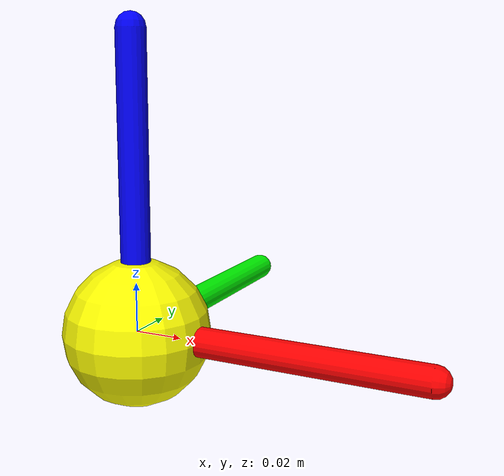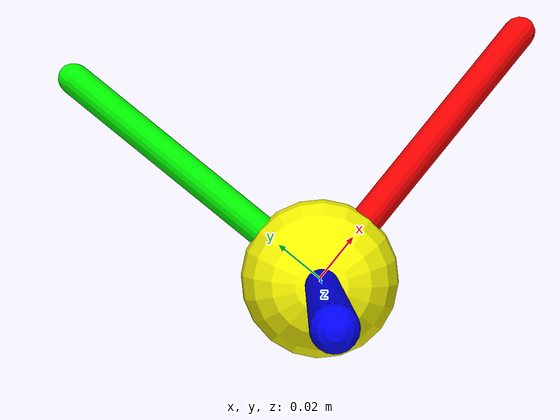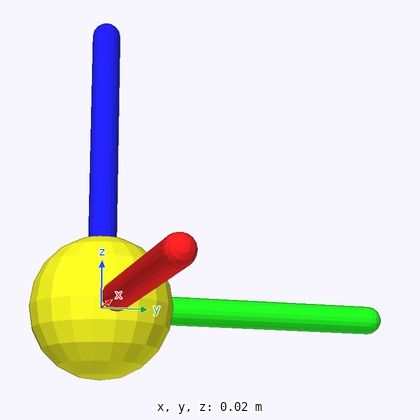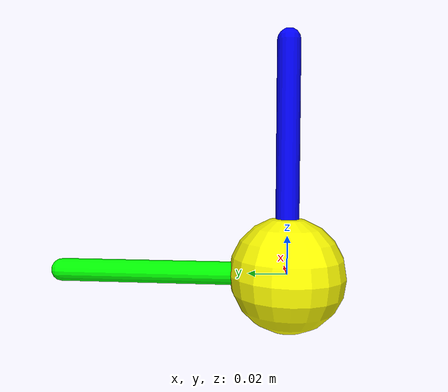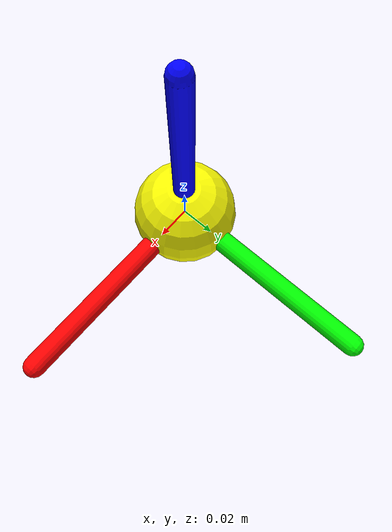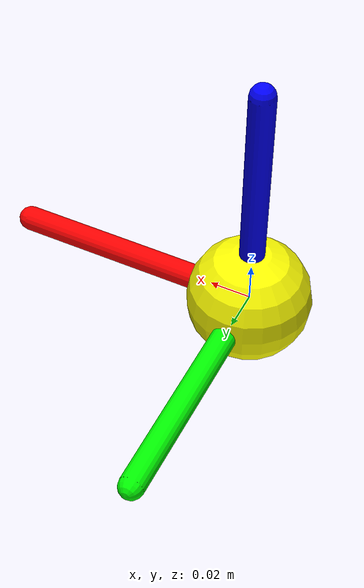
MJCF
<mujoco model="spacecraft_nd">
  <compiler angle="radian" inertiafromgeom="false"/>
  <option timestep="1e-3" gravity="0 0 0" integrator="implicit"/>
  <default>
    <joint armature="0.0" damping="0.0" stiffness="0"/>
    <geom contype="0" conaffinity="0" friction="0 0 0" rgba="0.8 0.6 0.4 1"/>
    <motor ctrllimited="true" ctrlrange="-100 100"/>
  </default>

  <worldbody>
    <!-- Just Debris...everywhere -->
    <body name="debris">
      <freejoint name="debris6dof"/>
      <!-- smaller visual than spacecraft -->
      <geom type="cylinder" size="0.0004 0.0006" rgba="0.9 0.9 0.2 1"/>

      <inertial pos="0.0 0.01 0" mass="1" diaginertia="1.0 1.0 1.0"/>      <site name="debris_com" pos="0 0 0" size="0.03" rgba="1 1 0 1" xyaxes="1 0 0 0 1 0"/>

      <geom name="debris_axis_x" type="capsule" fromto="0 0 0  0.12 0 0" size="0.006" rgba="1 0 0 1"/>
      <geom name="debris_axis_y" type="capsule" fromto="0 0 0  0 0.12 0" size="0.006" rgba="0 1 0 1"/>
      <geom name="debris_axis_z" type="capsule" fromto="0 0 0  0 0 0.12" size="0.006" rgba="0 0 1 1"/>
    </body>
  </worldbody>

  <actuator>
    <motor name="F_world_x" joint="debris6dof" gear="1 0 0 0 0 0"/>
    <motor name="F_world_y" joint="debris6dof" gear="0 1 0 0 0 0"/>
    <motor name="F_world_z" joint="debris6dof" gear="0 0 1 0 0 0"/>
    <motor name="M_body_x" joint="debris6dof" gear="0 0 0 1 0 0"/>
    <motor name="M_body_y" joint="debris6dof" gear="0 0 0 0 1 0"/>
    <motor name="M_body_z" joint="debris6dof" gear="0 0 0 0 0 1"/>
  </actuator>
</mujoco>
